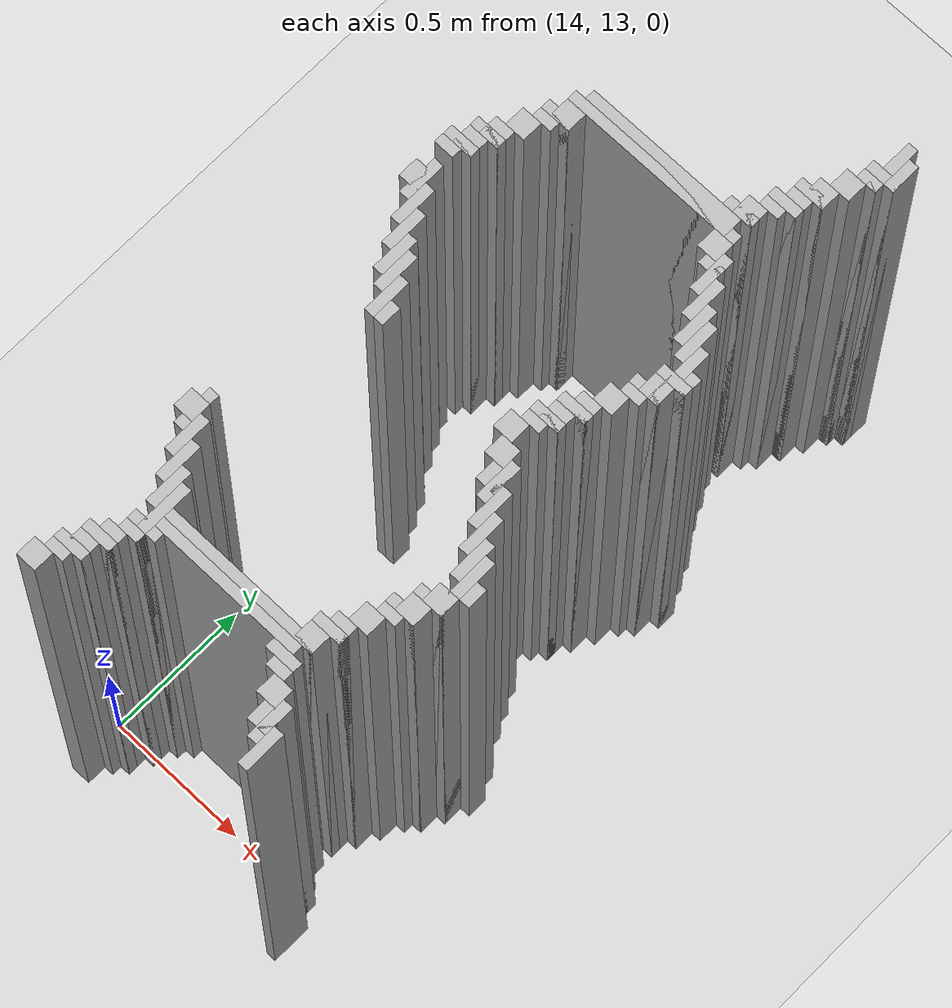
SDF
<sdf version="1.6">
 <world name="slam_world">
  <model name="ground_plane">
   <static>true</static>
   <link name="link">
    <collision name="collision">
     <geometry><plane><normal>0 0 1</normal><size>100 100</size></plane></geometry>
    </collision>
    <visual name="visual">
     <geometry><plane><normal>0 0 1</normal><size>100 100</size></plane></geometry>
     <material>
      <ambient>0.8 0.8 0.8 1</ambient>
      <diffuse>0.8 0.8 0.8 1</diffuse>
      <specular>0.8 0.8 0.8 1</specular>
     </material>
    </visual>
   </link>
  </model>
  <model name="wall_710">
   <static>true</static>
   <pose>14.912993039443155 15.261020881670532 1.0 0 0 0</pose>
   <link name="link">
    <collision name="collision">
     <geometry><box><size>0.03480278422273782 0.17401392111368907 2.0</size></box></geometry>
    </collision>
    <visual name="visual">
     <geometry><box><size>0.03480278422273782 0.17401392111368907 2.0</size></box></geometry>
     <material><ambient>0.5 0.5 0.5 1</ambient><diffuse>0.7 0.7 0.7 1</diffuse></material>
    </visual>
   </link>
  </model>
  <model name="wall_727">
   <static>true</static>
   <pose>14.947795823665892 15.261020881670532 1.0 0 0 0</pose>
   <link name="link">
    <collision name="collision">
     <geometry><box><size>0.03480278422273782 0.10440835266821345 2.0</size></box></geometry>
    </collision>
    <visual name="visual">
     <geometry><box><size>0.03480278422273782 0.10440835266821345 2.0</size></box></geometry>
     <material><ambient>0.5 0.5 0.5 1</ambient><diffuse>0.7 0.7 0.7 1</diffuse></material>
    </visual>
   </link>
  </model>
  <model name="wall_748">
   <static>true</static>
   <pose>14.912993039443155 15.226218097447795 1.0 0 0 0</pose>
   <link name="link">
    <collision name="collision">
     <geometry><box><size>0.10440835266821345 0.03480278422273782 2.0</size></box></geometry>
    </collision>
    <visual name="visual">
     <geometry><box><size>0.10440835266821345 0.03480278422273782 2.0</size></box></geometry>
     <material><ambient>0.5 0.5 0.5 1</ambient><diffuse>0.7 0.7 0.7 1</diffuse></material>
    </visual>
   </link>
  </model>
  <model name="wall_760">
   <static>true</static>
   <pose>14.895591647331786 15.191415313225058 1.0 0 0 0</pose>
   <link name="link">
    <collision name="collision">
     <geometry><box><size>0.06960556844547564 0.03480278422273782 2.0</size></box></geometry>
    </collision>
    <visual name="visual">
     <geometry><box><size>0.06960556844547564 0.03480278422273782 2.0</size></box></geometry>
     <material><ambient>0.5 0.5 0.5 1</ambient><diffuse>0.7 0.7 0.7 1</diffuse></material>
    </visual>
   </link>
  </model>
  <model name="wall_772">
   <static>true</static>
   <pose>14.860788863109049 15.139211136890951 1.0 0 0 0</pose>
   <link name="link">
    <collision name="collision">
     <geometry><box><size>0.06960556844547564 0.06960556844547564 2.0</size></box></geometry>
    </collision>
    <visual name="visual">
     <geometry><box><size>0.06960556844547564 0.06960556844547564 2.0</size></box></geometry>
     <material><ambient>0.5 0.5 0.5 1</ambient><diffuse>0.7 0.7 0.7 1</diffuse></material>
    </visual>
   </link>
  </model>
  <model name="wall_784">
   <static>true</static>
   <pose>14.825986078886311 15.069605568445475 1.0 0 0 0</pose>
   <link name="link">
    <collision name="collision">
     <geometry><box><size>0.06960556844547564 0.06960556844547564 2.0</size></box></geometry>
    </collision>
    <visual name="visual">
     <geometry><box><size>0.06960556844547564 0.06960556844547564 2.0</size></box></geometry>
     <material><ambient>0.5 0.5 0.5 1</ambient><diffuse>0.7 0.7 0.7 1</diffuse></material>
    </visual>
   </link>
  </model>
  <model name="wall_796">
   <static>true</static>
   <pose>14.80858468677494 15.052204176334106 1.0 0 0 0</pose>
   <link name="link">
    <collision name="collision">
     <geometry><box><size>0.10440835266821345 0.03480278422273782 2.0</size></box></geometry>
    </collision>
    <visual name="visual">
     <geometry><box><size>0.10440835266821345 0.03480278422273782 2.0</size></box></geometry>
     <material><ambient>0.5 0.5 0.5 1</ambient><diffuse>0.7 0.7 0.7 1</diffuse></material>
    </visual>
   </link>
  </model>
  <model name="wall_805">
   <static>true</static>
   <pose>14.791183294663572 15.0 1.0 0 0 0</pose>
   <link name="link">
    <collision name="collision">
     <geometry><box><size>0.06960556844547564 0.06960556844547564 2.0</size></box></geometry>
    </collision>
    <visual name="visual">
     <geometry><box><size>0.06960556844547564 0.06960556844547564 2.0</size></box></geometry>
     <material><ambient>0.5 0.5 0.5 1</ambient><diffuse>0.7 0.7 0.7 1</diffuse></material>
    </visual>
   </link>
  </model>
  <model name="wall_817">
   <static>true</static>
   <pose>14.773781902552203 14.982598607888631 1.0 0 0 0</pose>
   <link name="link">
    <collision name="collision">
     <geometry><box><size>0.10440835266821345 0.03480278422273782 2.0</size></box></geometry>
    </collision>
    <visual name="visual">
     <geometry><box><size>0.10440835266821345 0.03480278422273782 2.0</size></box></geometry>
     <material><ambient>0.5 0.5 0.5 1</ambient><diffuse>0.7 0.7 0.7 1</diffuse></material>
    </visual>
   </link>
  </model>
  <model name="wall_825">
   <static>true</static>
   <pose>14.756380510440835 14.947795823665892 1.0 0 0 0</pose>
   <link name="link">
    <collision name="collision">
     <geometry><box><size>0.06960556844547564 0.03480278422273782 2.0</size></box></geometry>
    </collision>
    <visual name="visual">
     <geometry><box><size>0.06960556844547564 0.03480278422273782 2.0</size></box></geometry>
     <material><ambient>0.5 0.5 0.5 1</ambient><diffuse>0.7 0.7 0.7 1</diffuse></material>
    </visual>
   </link>
  </model>
  <model name="wall_837">
   <static>true</static>
   <pose>14.721577726218097 14.895591647331786 1.0 0 0 0</pose>
   <link name="link">
    <collision name="collision">
     <geometry><box><size>0.06960556844547564 0.06960556844547564 2.0</size></box></geometry>
    </collision>
    <visual name="visual">
     <geometry><box><size>0.06960556844547564 0.06960556844547564 2.0</size></box></geometry>
     <material><ambient>0.5 0.5 0.5 1</ambient><diffuse>0.7 0.7 0.7 1</diffuse></material>
    </visual>
   </link>
  </model>
  <model name="wall_842">
   <static>true</static>
   <pose>14.704176334106728 14.878190255220417 1.0 0 0 0</pose>
   <link name="link">
    <collision name="collision">
     <geometry><box><size>0.10440835266821345 0.03480278422273782 2.0</size></box></geometry>
    </collision>
    <visual name="visual">
     <geometry><box><size>0.10440835266821345 0.03480278422273782 2.0</size></box></geometry>
     <material><ambient>0.5 0.5 0.5 1</ambient><diffuse>0.7 0.7 0.7 1</diffuse></material>
    </visual>
   </link>
  </model>
  <model name="wall_856">
   <static>true</static>
   <pose>14.443155452436194 14.825986078886311 1.0 0 0 0</pose>
   <link name="link">
    <collision name="collision">
     <geometry><box><size>0.5568445475638051 0.06960556844547564 2.0</size></box></geometry>
    </collision>
    <visual name="visual">
     <geometry><box><size>0.5568445475638051 0.06960556844547564 2.0</size></box></geometry>
     <material><ambient>0.5 0.5 0.5 1</ambient><diffuse>0.7 0.7 0.7 1</diffuse></material>
    </visual>
   </link>
  </model>
  <model name="wall_867">
   <static>true</static>
   <pose>14.443155452436194 14.80858468677494 1.0 0 0 0</pose>
   <link name="link">
    <collision name="collision">
     <geometry><box><size>0.6264501160092807 0.03480278422273782 2.0</size></box></geometry>
    </collision>
    <visual name="visual">
     <geometry><box><size>0.6264501160092807 0.03480278422273782 2.0</size></box></geometry>
     <material><ambient>0.5 0.5 0.5 1</ambient><diffuse>0.7 0.7 0.7 1</diffuse></material>
    </visual>
   </link>
  </model>
  <model name="wall_878">
   <static>true</static>
   <pose>14.164733178654291 14.756380510440835 1.0 0 0 0</pose>
   <link name="link">
    <collision name="collision">
     <geometry><box><size>0.06960556844547564 0.06960556844547564 2.0</size></box></geometry>
    </collision>
    <visual name="visual">
     <geometry><box><size>0.06960556844547564 0.06960556844547564 2.0</size></box></geometry>
     <material><ambient>0.5 0.5 0.5 1</ambient><diffuse>0.7 0.7 0.7 1</diffuse></material>
    </visual>
   </link>
  </model>
  <model name="wall_879">
   <static>true</static>
   <pose>14.721577726218097 14.756380510440835 1.0 0 0 0</pose>
   <link name="link">
    <collision name="collision">
     <geometry><box><size>0.06960556844547564 0.06960556844547564 2.0</size></box></geometry>
    </collision>
    <visual name="visual">
     <geometry><box><size>0.06960556844547564 0.06960556844547564 2.0</size></box></geometry>
     <material><ambient>0.5 0.5 0.5 1</ambient><diffuse>0.7 0.7 0.7 1</diffuse></material>
    </visual>
   </link>
  </model>
  <model name="wall_890">
   <static>true</static>
   <pose>14.147331786542923 14.738979118329466 1.0 0 0 0</pose>
   <link name="link">
    <collision name="collision">
     <geometry><box><size>0.10440835266821345 0.03480278422273782 2.0</size></box></geometry>
    </collision>
    <visual name="visual">
     <geometry><box><size>0.10440835266821345 0.03480278422273782 2.0</size></box></geometry>
     <material><ambient>0.5 0.5 0.5 1</ambient><diffuse>0.7 0.7 0.7 1</diffuse></material>
    </visual>
   </link>
  </model>
  <model name="wall_891">
   <static>true</static>
   <pose>14.773781902552203 14.68677494199536 1.0 0 0 0</pose>
   <link name="link">
    <collision name="collision">
     <geometry><box><size>0.03480278422273782 0.13921113689095127 2.0</size></box></geometry>
    </collision>
    <visual name="visual">
     <geometry><box><size>0.03480278422273782 0.13921113689095127 2.0</size></box></geometry>
     <material><ambient>0.5 0.5 0.5 1</ambient><diffuse>0.7 0.7 0.7 1</diffuse></material>
    </visual>
   </link>
  </model>
  <model name="wall_898">
   <static>true</static>
   <pose>14.129930394431554 14.704176334106728 1.0 0 0 0</pose>
   <link name="link">
    <collision name="collision">
     <geometry><box><size>0.06960556844547564 0.03480278422273782 2.0</size></box></geometry>
    </collision>
    <visual name="visual">
     <geometry><box><size>0.06960556844547564 0.03480278422273782 2.0</size></box></geometry>
     <material><ambient>0.5 0.5 0.5 1</ambient><diffuse>0.7 0.7 0.7 1</diffuse></material>
    </visual>
   </link>
  </model>
  <model name="wall_899">
   <static>true</static>
   <pose>14.756380510440835 14.704176334106728 1.0 0 0 0</pose>
   <link name="link">
    <collision name="collision">
     <geometry><box><size>0.06960556844547564 0.03480278422273782 2.0</size></box></geometry>
    </collision>
    <visual name="visual">
     <geometry><box><size>0.06960556844547564 0.03480278422273782 2.0</size></box></geometry>
     <material><ambient>0.5 0.5 0.5 1</ambient><diffuse>0.7 0.7 0.7 1</diffuse></material>
    </visual>
   </link>
  </model>
  <model name="wall_910">
   <static>true</static>
   <pose>14.095127610208817 14.65197215777262 1.0 0 0 0</pose>
   <link name="link">
    <collision name="collision">
     <geometry><box><size>0.06960556844547564 0.06960556844547564 2.0</size></box></geometry>
    </collision>
    <visual name="visual">
     <geometry><box><size>0.06960556844547564 0.06960556844547564 2.0</size></box></geometry>
     <material><ambient>0.5 0.5 0.5 1</ambient><diffuse>0.7 0.7 0.7 1</diffuse></material>
    </visual>
   </link>
  </model>
  <model name="wall_911">
   <static>true</static>
   <pose>14.80858468677494 14.617169373549883 1.0 0 0 0</pose>
   <link name="link">
    <collision name="collision">
     <geometry><box><size>0.03480278422273782 0.13921113689095127 2.0</size></box></geometry>
    </collision>
    <visual name="visual">
     <geometry><box><size>0.03480278422273782 0.13921113689095127 2.0</size></box></geometry>
     <material><ambient>0.5 0.5 0.5 1</ambient><diffuse>0.7 0.7 0.7 1</diffuse></material>
    </visual>
   </link>
  </model>
  <model name="wall_922">
   <static>true</static>
   <pose>14.06032482598608 14.582366589327146 1.0 0 0 0</pose>
   <link name="link">
    <collision name="collision">
     <geometry><box><size>0.06960556844547564 0.06960556844547564 2.0</size></box></geometry>
    </collision>
    <visual name="visual">
     <geometry><box><size>0.06960556844547564 0.06960556844547564 2.0</size></box></geometry>
     <material><ambient>0.5 0.5 0.5 1</ambient><diffuse>0.7 0.7 0.7 1</diffuse></material>
    </visual>
   </link>
  </model>
  <model name="wall_923">
   <static>true</static>
   <pose>14.84338747099768 14.547563805104408 1.0 0 0 0</pose>
   <link name="link">
    <collision name="collision">
     <geometry><box><size>0.03480278422273782 0.13921113689095127 2.0</size></box></geometry>
    </collision>
    <visual name="visual">
     <geometry><box><size>0.03480278422273782 0.13921113689095127 2.0</size></box></geometry>
     <material><ambient>0.5 0.5 0.5 1</ambient><diffuse>0.7 0.7 0.7 1</diffuse></material>
    </visual>
   </link>
  </model>
  <model name="wall_934">
   <static>true</static>
   <pose>14.042923433874709 14.564965197215777 1.0 0 0 0</pose>
   <link name="link">
    <collision name="collision">
     <geometry><box><size>0.10440835266821345 0.03480278422273782 2.0</size></box></geometry>
    </collision>
    <visual name="visual">
     <geometry><box><size>0.10440835266821345 0.03480278422273782 2.0</size></box></geometry>
     <material><ambient>0.5 0.5 0.5 1</ambient><diffuse>0.7 0.7 0.7 1</diffuse></material>
    </visual>
   </link>
  </model>
  <model name="wall_935">
   <static>true</static>
   <pose>14.878190255220417 14.512761020881669 1.0 0 0 0</pose>
   <link name="link">
    <collision name="collision">
     <geometry><box><size>0.03480278422273782 0.13921113689095127 2.0</size></box></geometry>
    </collision>
    <visual name="visual">
     <geometry><box><size>0.03480278422273782 0.13921113689095127 2.0</size></box></geometry>
     <material><ambient>0.5 0.5 0.5 1</ambient><diffuse>0.7 0.7 0.7 1</diffuse></material>
    </visual>
   </link>
  </model>
  <model name="wall_942">
   <static>true</static>
   <pose>14.02552204176334 14.512761020881669 1.0 0 0 0</pose>
   <link name="link">
    <collision name="collision">
     <geometry><box><size>0.06960556844547564 0.06960556844547564 2.0</size></box></geometry>
    </collision>
    <visual name="visual">
     <geometry><box><size>0.06960556844547564 0.06960556844547564 2.0</size></box></geometry>
     <material><ambient>0.5 0.5 0.5 1</ambient><diffuse>0.7 0.7 0.7 1</diffuse></material>
    </visual>
   </link>
  </model>
  <model name="wall_953">
   <static>true</static>
   <pose>14.008120649651971 14.4953596287703 1.0 0 0 0</pose>
   <link name="link">
    <collision name="collision">
     <geometry><box><size>0.10440835266821345 0.03480278422273782 2.0</size></box></geometry>
    </collision>
    <visual name="visual">
     <geometry><box><size>0.10440835266821345 0.03480278422273782 2.0</size></box></geometry>
     <material><ambient>0.5 0.5 0.5 1</ambient><diffuse>0.7 0.7 0.7 1</diffuse></material>
    </visual>
   </link>
  </model>
  <model name="wall_954">
   <static>true</static>
   <pose>14.912993039443155 14.408352668213457 1.0 0 0 0</pose>
   <link name="link">
    <collision name="collision">
     <geometry><box><size>0.03480278422273782 0.2088167053364269 2.0</size></box></geometry>
    </collision>
    <visual name="visual">
     <geometry><box><size>0.03480278422273782 0.2088167053364269 2.0</size></box></geometry>
     <material><ambient>0.5 0.5 0.5 1</ambient><diffuse>0.7 0.7 0.7 1</diffuse></material>
    </visual>
   </link>
  </model>
  <model name="wall_961">
   <static>true</static>
   <pose>13.990719257540603 14.460556844547563 1.0 0 0 0</pose>
   <link name="link">
    <collision name="collision">
     <geometry><box><size>0.06960556844547564 0.03480278422273782 2.0</size></box></geometry>
    </collision>
    <visual name="visual">
     <geometry><box><size>0.06960556844547564 0.03480278422273782 2.0</size></box></geometry>
     <material><ambient>0.5 0.5 0.5 1</ambient><diffuse>0.7 0.7 0.7 1</diffuse></material>
    </visual>
   </link>
  </model>
  <model name="wall_976">
   <static>true</static>
   <pose>14.947795823665892 14.408352668213457 1.0 0 0 0</pose>
   <link name="link">
    <collision name="collision">
     <geometry><box><size>0.03480278422273782 0.06960556844547564 2.0</size></box></geometry>
    </collision>
    <visual name="visual">
     <geometry><box><size>0.03480278422273782 0.06960556844547564 2.0</size></box></geometry>
     <material><ambient>0.5 0.5 0.5 1</ambient><diffuse>0.7 0.7 0.7 1</diffuse></material>
    </visual>
   </link>
  </model>
  <model name="wall_989">
   <static>true</static>
   <pose>14.008120649651971 14.33874709976798 1.0 0 0 0</pose>
   <link name="link">
    <collision name="collision">
     <geometry><box><size>0.03480278422273782 0.13921113689095127 2.0</size></box></geometry>
    </collision>
    <visual name="visual">
     <geometry><box><size>0.03480278422273782 0.13921113689095127 2.0</size></box></geometry>
     <material><ambient>0.5 0.5 0.5 1</ambient><diffuse>0.7 0.7 0.7 1</diffuse></material>
    </visual>
   </link>
  </model>
  <model name="wall_990">
   <static>true</static>
   <pose>14.912993039443155 14.390951276102088 1.0 0 0 0</pose>
   <link name="link">
    <collision name="collision">
     <geometry><box><size>0.10440835266821345 0.03480278422273782 2.0</size></box></geometry>
    </collision>
    <visual name="visual">
     <geometry><box><size>0.10440835266821345 0.03480278422273782 2.0</size></box></geometry>
     <material><ambient>0.5 0.5 0.5 1</ambient><diffuse>0.7 0.7 0.7 1</diffuse></material>
    </visual>
   </link>
  </model>
  <model name="wall_1004">
   <static>true</static>
   <pose>13.990719257540603 14.33874709976798 1.0 0 0 0</pose>
   <link name="link">
    <collision name="collision">
     <geometry><box><size>0.06960556844547564 0.06960556844547564 2.0</size></box></geometry>
    </collision>
    <visual name="visual">
     <geometry><box><size>0.06960556844547564 0.06960556844547564 2.0</size></box></geometry>
     <material><ambient>0.5 0.5 0.5 1</ambient><diffuse>0.7 0.7 0.7 1</diffuse></material>
    </visual>
   </link>
  </model>
  <model name="wall_1005">
   <static>true</static>
   <pose>14.895591647331786 14.33874709976798 1.0 0 0 0</pose>
   <link name="link">
    <collision name="collision">
     <geometry><box><size>0.06960556844547564 0.06960556844547564 2.0</size></box></geometry>
    </collision>
    <visual name="visual">
     <geometry><box><size>0.06960556844547564 0.06960556844547564 2.0</size></box></geometry>
     <material><ambient>0.5 0.5 0.5 1</ambient><diffuse>0.7 0.7 0.7 1</diffuse></material>
    </visual>
   </link>
  </model>
  <model name="wall_1019">
   <static>true</static>
   <pose>14.042923433874709 14.269141531322505 1.0 0 0 0</pose>
   <link name="link">
    <collision name="collision">
     <geometry><box><size>0.03480278422273782 0.13921113689095127 2.0</size></box></geometry>
    </collision>
    <visual name="visual">
     <geometry><box><size>0.03480278422273782 0.13921113689095127 2.0</size></box></geometry>
     <material><ambient>0.5 0.5 0.5 1</ambient><diffuse>0.7 0.7 0.7 1</diffuse></material>
    </visual>
   </link>
  </model>
  <model name="wall_1020">
   <static>true</static>
   <pose>14.878190255220417 14.321345707656612 1.0 0 0 0</pose>
   <link name="link">
    <collision name="collision">
     <geometry><box><size>0.10440835266821345 0.03480278422273782 2.0</size></box></geometry>
    </collision>
    <visual name="visual">
     <geometry><box><size>0.10440835266821345 0.03480278422273782 2.0</size></box></geometry>
     <material><ambient>0.5 0.5 0.5 1</ambient><diffuse>0.7 0.7 0.7 1</diffuse></material>
    </visual>
   </link>
  </model>
  <model name="wall_1029">
   <static>true</static>
   <pose>14.860788863109049 14.286542923433874 1.0 0 0 0</pose>
   <link name="link">
    <collision name="collision">
     <geometry><box><size>0.06960556844547564 0.03480278422273782 2.0</size></box></geometry>
    </collision>
    <visual name="visual">
     <geometry><box><size>0.06960556844547564 0.03480278422273782 2.0</size></box></geometry>
     <material><ambient>0.5 0.5 0.5 1</ambient><diffuse>0.7 0.7 0.7 1</diffuse></material>
    </visual>
   </link>
  </model>
  <model name="wall_1043">
   <static>true</static>
   <pose>14.077726218097448 14.199535962877029 1.0 0 0 0</pose>
   <link name="link">
    <collision name="collision">
     <geometry><box><size>0.03480278422273782 0.13921113689095127 2.0</size></box></geometry>
    </collision>
    <visual name="visual">
     <geometry><box><size>0.03480278422273782 0.13921113689095127 2.0</size></box></geometry>
     <material><ambient>0.5 0.5 0.5 1</ambient><diffuse>0.7 0.7 0.7 1</diffuse></material>
    </visual>
   </link>
  </model>
  <model name="wall_1044">
   <static>true</static>
   <pose>14.825986078886311 14.234338747099768 1.0 0 0 0</pose>
   <link name="link">
    <collision name="collision">
     <geometry><box><size>0.06960556844547564 0.06960556844547564 2.0</size></box></geometry>
    </collision>
    <visual name="visual">
     <geometry><box><size>0.06960556844547564 0.06960556844547564 2.0</size></box></geometry>
     <material><ambient>0.5 0.5 0.5 1</ambient><diffuse>0.7 0.7 0.7 1</diffuse></material>
    </visual>
   </link>
  </model>
  <model name="wall_1058">
   <static>true</static>
   <pose>14.112529002320185 14.129930394431554 1.0 0 0 0</pose>
   <link name="link">
    <collision name="collision">
     <geometry><box><size>0.03480278422273782 0.13921113689095127 2.0</size></box></geometry>
    </collision>
    <visual name="visual">
     <geometry><box><size>0.03480278422273782 0.13921113689095127 2.0</size></box></geometry>
     <material><ambient>0.5 0.5 0.5 1</ambient><diffuse>0.7 0.7 0.7 1</diffuse></material>
    </visual>
   </link>
  </model>
  <model name="wall_1059">
   <static>true</static>
   <pose>14.791183294663572 14.164733178654291 1.0 0 0 0</pose>
   <link name="link">
    <collision name="collision">
     <geometry><box><size>0.06960556844547564 0.06960556844547564 2.0</size></box></geometry>
    </collision>
    <visual name="visual">
     <geometry><box><size>0.06960556844547564 0.06960556844547564 2.0</size></box></geometry>
     <material><ambient>0.5 0.5 0.5 1</ambient><diffuse>0.7 0.7 0.7 1</diffuse></material>
    </visual>
   </link>
  </model>
  <model name="wall_1073">
   <static>true</static>
   <pose>14.147331786542923 14.095127610208817 1.0 0 0 0</pose>
   <link name="link">
    <collision name="collision">
     <geometry><box><size>0.03480278422273782 0.13921113689095127 2.0</size></box></geometry>
    </collision>
    <visual name="visual">
     <geometry><box><size>0.03480278422273782 0.13921113689095127 2.0</size></box></geometry>
     <material><ambient>0.5 0.5 0.5 1</ambient><diffuse>0.7 0.7 0.7 1</diffuse></material>
    </visual>
   </link>
  </model>
  <model name="wall_1074">
   <static>true</static>
   <pose>14.773781902552203 14.147331786542923 1.0 0 0 0</pose>
   <link name="link">
    <collision name="collision">
     <geometry><box><size>0.10440835266821345 0.03480278422273782 2.0</size></box></geometry>
    </collision>
    <visual name="visual">
     <geometry><box><size>0.10440835266821345 0.03480278422273782 2.0</size></box></geometry>
     <material><ambient>0.5 0.5 0.5 1</ambient><diffuse>0.7 0.7 0.7 1</diffuse></material>
    </visual>
   </link>
  </model>
  <model name="wall_1082">
   <static>true</static>
   <pose>14.756380510440835 14.095127610208817 1.0 0 0 0</pose>
   <link name="link">
    <collision name="collision">
     <geometry><box><size>0.06960556844547564 0.06960556844547564 2.0</size></box></geometry>
    </collision>
    <visual name="visual">
     <geometry><box><size>0.06960556844547564 0.06960556844547564 2.0</size></box></geometry>
     <material><ambient>0.5 0.5 0.5 1</ambient><diffuse>0.7 0.7 0.7 1</diffuse></material>
    </visual>
   </link>
  </model>
  <model name="wall_1096">
   <static>true</static>
   <pose>14.18213457076566 14.02552204176334 1.0 0 0 0</pose>
   <link name="link">
    <collision name="collision">
     <geometry><box><size>0.03480278422273782 0.13921113689095127 2.0</size></box></geometry>
    </collision>
    <visual name="visual">
     <geometry><box><size>0.03480278422273782 0.13921113689095127 2.0</size></box></geometry>
     <material><ambient>0.5 0.5 0.5 1</ambient><diffuse>0.7 0.7 0.7 1</diffuse></material>
    </visual>
   </link>
  </model>
  <model name="wall_1097">
   <static>true</static>
   <pose>14.738979118329466 14.077726218097448 1.0 0 0 0</pose>
   <link name="link">
    <collision name="collision">
     <geometry><box><size>0.10440835266821345 0.03480278422273782 2.0</size></box></geometry>
    </collision>
    <visual name="visual">
     <geometry><box><size>0.10440835266821345 0.03480278422273782 2.0</size></box></geometry>
     <material><ambient>0.5 0.5 0.5 1</ambient><diffuse>0.7 0.7 0.7 1</diffuse></material>
    </visual>
   </link>
  </model>
  <model name="wall_1105">
   <static>true</static>
   <pose>14.721577726218097 14.042923433874709 1.0 0 0 0</pose>
   <link name="link">
    <collision name="collision">
     <geometry><box><size>0.06960556844547564 0.03480278422273782 2.0</size></box></geometry>
    </collision>
    <visual name="visual">
     <geometry><box><size>0.06960556844547564 0.03480278422273782 2.0</size></box></geometry>
     <material><ambient>0.5 0.5 0.5 1</ambient><diffuse>0.7 0.7 0.7 1</diffuse></material>
    </visual>
   </link>
  </model>
  <model name="wall_1118">
   <static>true</static>
   <pose>14.2169373549884 13.990719257540603 1.0 0 0 0</pose>
   <link name="link">
    <collision name="collision">
     <geometry><box><size>0.03480278422273782 0.06960556844547564 2.0</size></box></geometry>
    </collision>
    <visual name="visual">
     <geometry><box><size>0.03480278422273782 0.06960556844547564 2.0</size></box></geometry>
     <material><ambient>0.5 0.5 0.5 1</ambient><diffuse>0.7 0.7 0.7 1</diffuse></material>
    </visual>
   </link>
  </model>
  <model name="wall_1119">
   <static>true</static>
   <pose>14.68677494199536 13.990719257540603 1.0 0 0 0</pose>
   <link name="link">
    <collision name="collision">
     <geometry><box><size>0.06960556844547564 0.06960556844547564 2.0</size></box></geometry>
    </collision>
    <visual name="visual">
     <geometry><box><size>0.06960556844547564 0.06960556844547564 2.0</size></box></geometry>
     <material><ambient>0.5 0.5 0.5 1</ambient><diffuse>0.7 0.7 0.7 1</diffuse></material>
    </visual>
   </link>
  </model>
  <model name="wall_1134">
   <static>true</static>
   <pose>14.721577726218097 13.921113689095128 1.0 0 0 0</pose>
   <link name="link">
    <collision name="collision">
     <geometry><box><size>0.06960556844547564 0.06960556844547564 2.0</size></box></geometry>
    </collision>
    <visual name="visual">
     <geometry><box><size>0.06960556844547564 0.06960556844547564 2.0</size></box></geometry>
     <material><ambient>0.5 0.5 0.5 1</ambient><diffuse>0.7 0.7 0.7 1</diffuse></material>
    </visual>
   </link>
  </model>
  <model name="wall_1149">
   <static>true</static>
   <pose>14.773781902552203 13.851508120649651 1.0 0 0 0</pose>
   <link name="link">
    <collision name="collision">
     <geometry><box><size>0.03480278422273782 0.13921113689095127 2.0</size></box></geometry>
    </collision>
    <visual name="visual">
     <geometry><box><size>0.03480278422273782 0.13921113689095127 2.0</size></box></geometry>
     <material><ambient>0.5 0.5 0.5 1</ambient><diffuse>0.7 0.7 0.7 1</diffuse></material>
    </visual>
   </link>
  </model>
  <model name="wall_1164">
   <static>true</static>
   <pose>14.756380510440835 13.851508120649651 1.0 0 0 0</pose>
   <link name="link">
    <collision name="collision">
     <geometry><box><size>0.06960556844547564 0.06960556844547564 2.0</size></box></geometry>
    </collision>
    <visual name="visual">
     <geometry><box><size>0.06960556844547564 0.06960556844547564 2.0</size></box></geometry>
     <material><ambient>0.5 0.5 0.5 1</ambient><diffuse>0.7 0.7 0.7 1</diffuse></material>
    </visual>
   </link>
  </model>
  <model name="wall_1179">
   <static>true</static>
   <pose>14.80858468677494 13.781902552204176 1.0 0 0 0</pose>
   <link name="link">
    <collision name="collision">
     <geometry><box><size>0.03480278422273782 0.13921113689095127 2.0</size></box></geometry>
    </collision>
    <visual name="visual">
     <geometry><box><size>0.03480278422273782 0.13921113689095127 2.0</size></box></geometry>
     <material><ambient>0.5 0.5 0.5 1</ambient><diffuse>0.7 0.7 0.7 1</diffuse></material>
    </visual>
   </link>
  </model>
  <model name="wall_1201">
   <static>true</static>
   <pose>14.84338747099768 13.7122969837587 1.0 0 0 0</pose>
   <link name="link">
    <collision name="collision">
     <geometry><box><size>0.03480278422273782 0.13921113689095127 2.0</size></box></geometry>
    </collision>
    <visual name="visual">
     <geometry><box><size>0.03480278422273782 0.13921113689095127 2.0</size></box></geometry>
     <material><ambient>0.5 0.5 0.5 1</ambient><diffuse>0.7 0.7 0.7 1</diffuse></material>
    </visual>
   </link>
  </model>
  <model name="wall_1216">
   <static>true</static>
   <pose>14.878190255220417 13.642691415313225 1.0 0 0 0</pose>
   <link name="link">
    <collision name="collision">
     <geometry><box><size>0.03480278422273782 0.13921113689095127 2.0</size></box></geometry>
    </collision>
    <visual name="visual">
     <geometry><box><size>0.03480278422273782 0.13921113689095127 2.0</size></box></geometry>
     <material><ambient>0.5 0.5 0.5 1</ambient><diffuse>0.7 0.7 0.7 1</diffuse></material>
    </visual>
   </link>
  </model>
  <model name="wall_1231">
   <static>true</static>
   <pose>14.912993039443155 13.573085846867748 1.0 0 0 0</pose>
   <link name="link">
    <collision name="collision">
     <geometry><box><size>0.03480278422273782 0.2088167053364269 2.0</size></box></geometry>
    </collision>
    <visual name="visual">
     <geometry><box><size>0.03480278422273782 0.2088167053364269 2.0</size></box></geometry>
     <material><ambient>0.5 0.5 0.5 1</ambient><diffuse>0.7 0.7 0.7 1</diffuse></material>
    </visual>
   </link>
  </model>
  <model name="wall_1250">
   <static>true</static>
   <pose>14.947795823665892 13.573085846867748 1.0 0 0 0</pose>
   <link name="link">
    <collision name="collision">
     <geometry><box><size>0.03480278422273782 0.06960556844547564 2.0</size></box></geometry>
    </collision>
    <visual name="visual">
     <geometry><box><size>0.03480278422273782 0.06960556844547564 2.0</size></box></geometry>
     <material><ambient>0.5 0.5 0.5 1</ambient><diffuse>0.7 0.7 0.7 1</diffuse></material>
    </visual>
   </link>
  </model>
  <model name="wall_1269">
   <static>true</static>
   <pose>14.895591647331786 13.503480278422273 1.0 0 0 0</pose>
   <link name="link">
    <collision name="collision">
     <geometry><box><size>0.06960556844547564 0.06960556844547564 2.0</size></box></geometry>
    </collision>
    <visual name="visual">
     <geometry><box><size>0.06960556844547564 0.06960556844547564 2.0</size></box></geometry>
     <material><ambient>0.5 0.5 0.5 1</ambient><diffuse>0.7 0.7 0.7 1</diffuse></material>
    </visual>
   </link>
  </model>
  <model name="wall_1280">
   <static>true</static>
   <pose>14.042923433874709 13.433874709976797 1.0 0 0 0</pose>
   <link name="link">
    <collision name="collision">
     <geometry><box><size>0.03480278422273782 0.13921113689095127 2.0</size></box></geometry>
    </collision>
    <visual name="visual">
     <geometry><box><size>0.03480278422273782 0.13921113689095127 2.0</size></box></geometry>
     <material><ambient>0.5 0.5 0.5 1</ambient><diffuse>0.7 0.7 0.7 1</diffuse></material>
    </visual>
   </link>
  </model>
  <model name="wall_1281">
   <static>true</static>
   <pose>14.878190255220417 13.486078886310905 1.0 0 0 0</pose>
   <link name="link">
    <collision name="collision">
     <geometry><box><size>0.10440835266821345 0.03480278422273782 2.0</size></box></geometry>
    </collision>
    <visual name="visual">
     <geometry><box><size>0.10440835266821345 0.03480278422273782 2.0</size></box></geometry>
     <material><ambient>0.5 0.5 0.5 1</ambient><diffuse>0.7 0.7 0.7 1</diffuse></material>
    </visual>
   </link>
  </model>
  <model name="wall_1292">
   <static>true</static>
   <pose>14.02552204176334 13.433874709976797 1.0 0 0 0</pose>
   <link name="link">
    <collision name="collision">
     <geometry><box><size>0.06960556844547564 0.06960556844547564 2.0</size></box></geometry>
    </collision>
    <visual name="visual">
     <geometry><box><size>0.06960556844547564 0.06960556844547564 2.0</size></box></geometry>
     <material><ambient>0.5 0.5 0.5 1</ambient><diffuse>0.7 0.7 0.7 1</diffuse></material>
    </visual>
   </link>
  </model>
  <model name="wall_1293">
   <static>true</static>
   <pose>14.860788863109049 13.433874709976797 1.0 0 0 0</pose>
   <link name="link">
    <collision name="collision">
     <geometry><box><size>0.06960556844547564 0.06960556844547564 2.0</size></box></geometry>
    </collision>
    <visual name="visual">
     <geometry><box><size>0.06960556844547564 0.06960556844547564 2.0</size></box></geometry>
     <material><ambient>0.5 0.5 0.5 1</ambient><diffuse>0.7 0.7 0.7 1</diffuse></material>
    </visual>
   </link>
  </model>
  <model name="wall_1304">
   <static>true</static>
   <pose>14.077726218097448 13.364269141531322 1.0 0 0 0</pose>
   <link name="link">
    <collision name="collision">
     <geometry><box><size>0.03480278422273782 0.13921113689095127 2.0</size></box></geometry>
    </collision>
    <visual name="visual">
     <geometry><box><size>0.03480278422273782 0.13921113689095127 2.0</size></box></geometry>
     <material><ambient>0.5 0.5 0.5 1</ambient><diffuse>0.7 0.7 0.7 1</diffuse></material>
    </visual>
   </link>
  </model>
  <model name="wall_1305">
   <static>true</static>
   <pose>14.84338747099768 13.416473317865428 1.0 0 0 0</pose>
   <link name="link">
    <collision name="collision">
     <geometry><box><size>0.10440835266821345 0.03480278422273782 2.0</size></box></geometry>
    </collision>
    <visual name="visual">
     <geometry><box><size>0.10440835266821345 0.03480278422273782 2.0</size></box></geometry>
     <material><ambient>0.5 0.5 0.5 1</ambient><diffuse>0.7 0.7 0.7 1</diffuse></material>
    </visual>
   </link>
  </model>
  <model name="wall_1311">
   <static>true</static>
   <pose>14.825986078886311 13.38167053364269 1.0 0 0 0</pose>
   <link name="link">
    <collision name="collision">
     <geometry><box><size>0.06960556844547564 0.03480278422273782 2.0</size></box></geometry>
    </collision>
    <visual name="visual">
     <geometry><box><size>0.06960556844547564 0.03480278422273782 2.0</size></box></geometry>
     <material><ambient>0.5 0.5 0.5 1</ambient><diffuse>0.7 0.7 0.7 1</diffuse></material>
    </visual>
   </link>
  </model>
  <model name="wall_1322">
   <static>true</static>
   <pose>14.112529002320185 13.294663573085847 1.0 0 0 0</pose>
   <link name="link">
    <collision name="collision">
     <geometry><box><size>0.03480278422273782 0.13921113689095127 2.0</size></box></geometry>
    </collision>
    <visual name="visual">
     <geometry><box><size>0.03480278422273782 0.13921113689095127 2.0</size></box></geometry>
     <material><ambient>0.5 0.5 0.5 1</ambient><diffuse>0.7 0.7 0.7 1</diffuse></material>
    </visual>
   </link>
  </model>
  <model name="wall_1323">
   <static>true</static>
   <pose>14.791183294663572 13.329466357308585 1.0 0 0 0</pose>
   <link name="link">
    <collision name="collision">
     <geometry><box><size>0.06960556844547564 0.06960556844547564 2.0</size></box></geometry>
    </collision>
    <visual name="visual">
     <geometry><box><size>0.06960556844547564 0.06960556844547564 2.0</size></box></geometry>
     <material><ambient>0.5 0.5 0.5 1</ambient><diffuse>0.7 0.7 0.7 1</diffuse></material>
    </visual>
   </link>
  </model>
  <model name="wall_1334">
   <static>true</static>
   <pose>14.147331786542923 13.22505800464037 1.0 0 0 0</pose>
   <link name="link">
    <collision name="collision">
     <geometry><box><size>0.03480278422273782 0.13921113689095127 2.0</size></box></geometry>
    </collision>
    <visual name="visual">
     <geometry><box><size>0.03480278422273782 0.13921113689095127 2.0</size></box></geometry>
     <material><ambient>0.5 0.5 0.5 1</ambient><diffuse>0.7 0.7 0.7 1</diffuse></material>
    </visual>
   </link>
  </model>
  <model name="wall_1335">
   <static>true</static>
   <pose>14.756380510440835 13.259860788863108 1.0 0 0 0</pose>
   <link name="link">
    <collision name="collision">
     <geometry><box><size>0.06960556844547564 0.06960556844547564 2.0</size></box></geometry>
    </collision>
    <visual name="visual">
     <geometry><box><size>0.06960556844547564 0.06960556844547564 2.0</size></box></geometry>
     <material><ambient>0.5 0.5 0.5 1</ambient><diffuse>0.7 0.7 0.7 1</diffuse></material>
    </visual>
   </link>
  </model>
  <model name="wall_1346">
   <static>true</static>
   <pose>14.18213457076566 13.155452436194896 1.0 0 0 0</pose>
   <link name="link">
    <collision name="collision">
     <geometry><box><size>0.03480278422273782 0.2088167053364269 2.0</size></box></geometry>
    </collision>
    <visual name="visual">
     <geometry><box><size>0.03480278422273782 0.2088167053364269 2.0</size></box></geometry>
     <material><ambient>0.5 0.5 0.5 1</ambient><diffuse>0.7 0.7 0.7 1</diffuse></material>
    </visual>
   </link>
  </model>
  <model name="wall_1347">
   <static>true</static>
   <pose>14.738979118329466 13.24245939675174 1.0 0 0 0</pose>
   <link name="link">
    <collision name="collision">
     <geometry><box><size>0.10440835266821345 0.03480278422273782 2.0</size></box></geometry>
    </collision>
    <visual name="visual">
     <geometry><box><size>0.10440835266821345 0.03480278422273782 2.0</size></box></geometry>
     <material><ambient>0.5 0.5 0.5 1</ambient><diffuse>0.7 0.7 0.7 1</diffuse></material>
    </visual>
   </link>
  </model>
  <model name="wall_1353">
   <static>true</static>
   <pose>14.721577726218097 13.190255220417633 1.0 0 0 0</pose>
   <link name="link">
    <collision name="collision">
     <geometry><box><size>0.06960556844547564 0.06960556844547564 2.0</size></box></geometry>
    </collision>
    <visual name="visual">
     <geometry><box><size>0.06960556844547564 0.06960556844547564 2.0</size></box></geometry>
     <material><ambient>0.5 0.5 0.5 1</ambient><diffuse>0.7 0.7 0.7 1</diffuse></material>
    </visual>
   </link>
  </model>
  <model name="wall_1365">
   <static>true</static>
   <pose>14.477958236658932 13.172853828306264 1.0 0 0 0</pose>
   <link name="link">
    <collision name="collision">
     <geometry><box><size>0.5568445475638051 0.03480278422273782 2.0</size></box></geometry>
    </collision>
    <visual name="visual">
     <geometry><box><size>0.5568445475638051 0.03480278422273782 2.0</size></box></geometry>
     <material><ambient>0.5 0.5 0.5 1</ambient><diffuse>0.7 0.7 0.7 1</diffuse></material>
    </visual>
   </link>
  </model>
  <model name="wall_1371">
   <static>true</static>
   <pose>14.460556844547563 13.138051044083527 1.0 0 0 0</pose>
   <link name="link">
    <collision name="collision">
     <geometry><box><size>0.5220417633410672 0.03480278422273782 2.0</size></box></geometry>
    </collision>
    <visual name="visual">
     <geometry><box><size>0.5220417633410672 0.03480278422273782 2.0</size></box></geometry>
     <material><ambient>0.5 0.5 0.5 1</ambient><diffuse>0.7 0.7 0.7 1</diffuse></material>
    </visual>
   </link>
  </model>
  <model name="wall_1385">
   <static>true</static>
   <pose>14.18213457076566 13.103248259860788 1.0 0 0 0</pose>
   <link name="link">
    <collision name="collision">
     <geometry><box><size>0.10440835266821345 0.03480278422273782 2.0</size></box></geometry>
    </collision>
    <visual name="visual">
     <geometry><box><size>0.10440835266821345 0.03480278422273782 2.0</size></box></geometry>
     <material><ambient>0.5 0.5 0.5 1</ambient><diffuse>0.7 0.7 0.7 1</diffuse></material>
    </visual>
   </link>
  </model>
  <model name="wall_1386">
   <static>true</static>
   <pose>14.704176334106728 13.103248259860788 1.0 0 0 0</pose>
   <link name="link">
    <collision name="collision">
     <geometry><box><size>0.10440835266821345 0.03480278422273782 2.0</size></box></geometry>
    </collision>
    <visual name="visual">
     <geometry><box><size>0.10440835266821345 0.03480278422273782 2.0</size></box></geometry>
     <material><ambient>0.5 0.5 0.5 1</ambient><diffuse>0.7 0.7 0.7 1</diffuse></material>
    </visual>
   </link>
  </model>
  <model name="wall_1397">
   <static>true</static>
   <pose>14.164733178654291 13.06844547563805 1.0 0 0 0</pose>
   <link name="link">
    <collision name="collision">
     <geometry><box><size>0.06960556844547564 0.03480278422273782 2.0</size></box></geometry>
    </collision>
    <visual name="visual">
     <geometry><box><size>0.06960556844547564 0.03480278422273782 2.0</size></box></geometry>
     <material><ambient>0.5 0.5 0.5 1</ambient><diffuse>0.7 0.7 0.7 1</diffuse></material>
    </visual>
   </link>
  </model>
  <model name="wall_1398">
   <static>true</static>
   <pose>14.721577726218097 13.06844547563805 1.0 0 0 0</pose>
   <link name="link">
    <collision name="collision">
     <geometry><box><size>0.06960556844547564 0.03480278422273782 2.0</size></box></geometry>
    </collision>
    <visual name="visual">
     <geometry><box><size>0.06960556844547564 0.03480278422273782 2.0</size></box></geometry>
     <material><ambient>0.5 0.5 0.5 1</ambient><diffuse>0.7 0.7 0.7 1</diffuse></material>
    </visual>
   </link>
  </model>
  <model name="wall_1412">
   <static>true</static>
   <pose>14.129930394431554 13.016241299303944 1.0 0 0 0</pose>
   <link name="link">
    <collision name="collision">
     <geometry><box><size>0.06960556844547564 0.06960556844547564 2.0</size></box></geometry>
    </collision>
    <visual name="visual">
     <geometry><box><size>0.06960556844547564 0.06960556844547564 2.0</size></box></geometry>
     <material><ambient>0.5 0.5 0.5 1</ambient><diffuse>0.7 0.7 0.7 1</diffuse></material>
    </visual>
   </link>
  </model>
  <model name="wall_1413">
   <static>true</static>
   <pose>14.756380510440835 13.016241299303944 1.0 0 0 0</pose>
   <link name="link">
    <collision name="collision">
     <geometry><box><size>0.06960556844547564 0.06960556844547564 2.0</size></box></geometry>
    </collision>
    <visual name="visual">
     <geometry><box><size>0.06960556844547564 0.06960556844547564 2.0</size></box></geometry>
     <material><ambient>0.5 0.5 0.5 1</ambient><diffuse>0.7 0.7 0.7 1</diffuse></material>
    </visual>
   </link>
  </model>
  <model name="wall_1427">
   <static>true</static>
   <pose>14.112529002320185 12.998839907192576 1.0 0 0 0</pose>
   <link name="link">
    <collision name="collision">
     <geometry><box><size>0.10440835266821345 0.03480278422273782 2.0</size></box></geometry>
    </collision>
    <visual name="visual">
     <geometry><box><size>0.10440835266821345 0.03480278422273782 2.0</size></box></geometry>
     <material><ambient>0.5 0.5 0.5 1</ambient><diffuse>0.7 0.7 0.7 1</diffuse></material>
    </visual>
   </link>
  </model>
  <model name="wall_1428">
   <static>true</static>
   <pose>14.80858468677494 12.946635730858468 1.0 0 0 0</pose>
   <link name="link">
    <collision name="collision">
     <geometry><box><size>0.03480278422273782 0.13921113689095127 2.0</size></box></geometry>
    </collision>
    <visual name="visual">
     <geometry><box><size>0.03480278422273782 0.13921113689095127 2.0</size></box></geometry>
     <material><ambient>0.5 0.5 0.5 1</ambient><diffuse>0.7 0.7 0.7 1</diffuse></material>
    </visual>
   </link>
  </model>
  <model name="wall_1442">
   <static>true</static>
   <pose>14.095127610208817 12.946635730858468 1.0 0 0 0</pose>
   <link name="link">
    <collision name="collision">
     <geometry><box><size>0.06960556844547564 0.06960556844547564 2.0</size></box></geometry>
    </collision>
    <visual name="visual">
     <geometry><box><size>0.06960556844547564 0.06960556844547564 2.0</size></box></geometry>
     <material><ambient>0.5 0.5 0.5 1</ambient><diffuse>0.7 0.7 0.7 1</diffuse></material>
    </visual>
   </link>
  </model>
  <model name="wall_1443">
   <static>true</static>
   <pose>14.791183294663572 12.946635730858468 1.0 0 0 0</pose>
   <link name="link">
    <collision name="collision">
     <geometry><box><size>0.06960556844547564 0.06960556844547564 2.0</size></box></geometry>
    </collision>
    <visual name="visual">
     <geometry><box><size>0.06960556844547564 0.06960556844547564 2.0</size></box></geometry>
     <material><ambient>0.5 0.5 0.5 1</ambient><diffuse>0.7 0.7 0.7 1</diffuse></material>
    </visual>
   </link>
  </model>
  <model name="wall_1457">
   <static>true</static>
   <pose>14.077726218097448 12.929234338747099 1.0 0 0 0</pose>
   <link name="link">
    <collision name="collision">
     <geometry><box><size>0.10440835266821345 0.03480278422273782 2.0</size></box></geometry>
    </collision>
    <visual name="visual">
     <geometry><box><size>0.10440835266821345 0.03480278422273782 2.0</size></box></geometry>
     <material><ambient>0.5 0.5 0.5 1</ambient><diffuse>0.7 0.7 0.7 1</diffuse></material>
    </visual>
   </link>
  </model>
  <model name="wall_1458">
   <static>true</static>
   <pose>14.84338747099768 12.877030162412993 1.0 0 0 0</pose>
   <link name="link">
    <collision name="collision">
     <geometry><box><size>0.03480278422273782 0.13921113689095127 2.0</size></box></geometry>
    </collision>
    <visual name="visual">
     <geometry><box><size>0.03480278422273782 0.13921113689095127 2.0</size></box></geometry>
     <material><ambient>0.5 0.5 0.5 1</ambient><diffuse>0.7 0.7 0.7 1</diffuse></material>
    </visual>
   </link>
  </model>
  <model name="wall_1466">
   <static>true</static>
   <pose>14.06032482598608 12.894431554524362 1.0 0 0 0</pose>
   <link name="link">
    <collision name="collision">
     <geometry><box><size>0.06960556844547564 0.03480278422273782 2.0</size></box></geometry>
    </collision>
    <visual name="visual">
     <geometry><box><size>0.06960556844547564 0.03480278422273782 2.0</size></box></geometry>
     <material><ambient>0.5 0.5 0.5 1</ambient><diffuse>0.7 0.7 0.7 1</diffuse></material>
    </visual>
   </link>
  </model>
  <model name="wall_1480">
   <static>true</static>
   <pose>14.02552204176334 12.842227378190255 1.0 0 0 0</pose>
   <link name="link">
    <collision name="collision">
     <geometry><box><size>0.06960556844547564 0.06960556844547564 2.0</size></box></geometry>
    </collision>
    <visual name="visual">
     <geometry><box><size>0.06960556844547564 0.06960556844547564 2.0</size></box></geometry>
     <material><ambient>0.5 0.5 0.5 1</ambient><diffuse>0.7 0.7 0.7 1</diffuse></material>
    </visual>
   </link>
  </model>
 </world>
</sdf>
